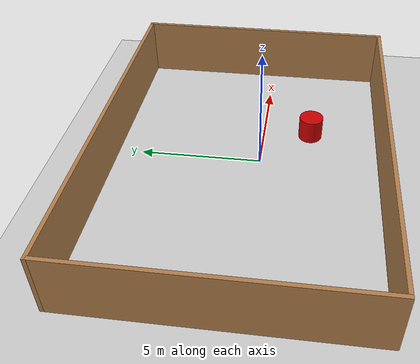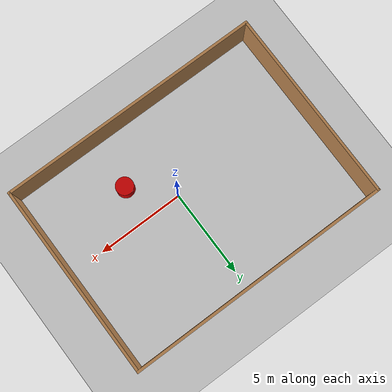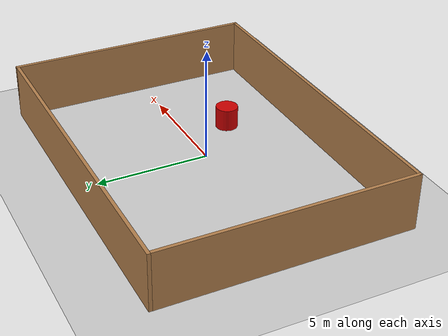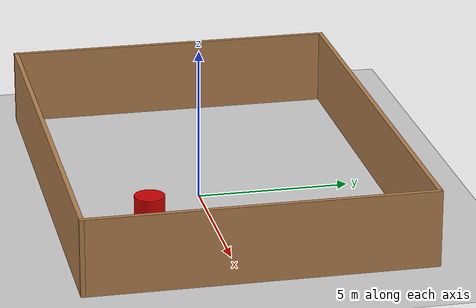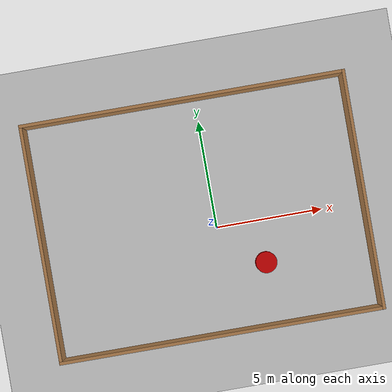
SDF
<sdf version="1.7">
 <world name="default">
  <light name="sun" type="directional">
   <pose>0 0 10 0 -0 0</pose>
   <diffuse>0.8 0.8 0.8 1</diffuse>
   <specular>0.2 0.2 0.2 1</specular>
   <attenuation>
    <range>1000</range>
    <constant>0.9</constant>
    <linear>0.01</linear>
    <quadratic>0.001</quadratic>
   </attenuation>
   <direction>-0.5 0.1 -0.9</direction>
   <spot><inner_angle>0</inner_angle><outer_angle>0</outer_angle><falloff>0</falloff></spot>
  </light>
  <model name="ground_plane">
   <static>1</static>
   <link name="link">
    <collision name="collision">
     <geometry><plane><normal>0 0 1</normal><size>100 100</size></plane></geometry>
     <surface><friction><ode><mu>100</mu><mu2>50</mu2></ode></friction></surface>
    </collision>
    <visual name="visual">
     <cast_shadows>0</cast_shadows>
     <geometry><plane><normal>0 0 1</normal><size>100 100</size></plane></geometry>
     <material>
      <script><uri>file://media/materials/scripts/gazebo.material</uri><name>Gazebo/Grey</name></script>
     </material>
    </visual>
   </link>
  </model>
  <gravity>0 0 -9.8</gravity>
  <magnetic_field>6e-06 2.3e-05 -4.2e-05</magnetic_field>
  <atmosphere type="adiabatic"/>
  <physics name="default_physics" default="0" type="ode">
   <max_step_size>0.001</max_step_size>
   <real_time_factor>1</real_time_factor>
   <real_time_update_rate>1000</real_time_update_rate>
  </physics>
  <scene><ambient>0.4 0.4 0.4 1</ambient><background>0.7 0.7 0.7 1</background><shadows>1</shadows></scene>
  <spherical_coordinates>
   <surface_model>EARTH_WGS84</surface_model>
   <latitude_deg>0</latitude_deg>
   <longitude_deg>0</longitude_deg>
   <elevation>0</elevation>
   <heading_deg>0</heading_deg>
  </spherical_coordinates>
  <model name="test">
   <pose>-0.59103 0.583322 0 0 -0 0</pose>
   <link name="Wall_10">
    <collision name="Wall_10_Collision">
     <geometry><box><size>11.15 0.15 2.5</size></box></geometry>
     <pose>0 0 1.25 0 -0 0</pose>
    </collision>
    <visual name="Wall_10_Visual">
     <pose>0 0 1.25 0 -0 0</pose>
     <geometry><box><size>11.15 0.15 2.5</size></box></geometry>
     <material>
      <script><uri>file://media/materials/scripts/gazebo.material</uri><name>Gazebo/Wood</name></script>
      <ambient>0.760784 0.662745 0.627451 1</ambient>
     </material>
     <meta><layer>0</layer></meta>
    </visual>
    <pose>7.5 0 0 0 -0 -1.5708</pose>
   </link>
   <link name="Wall_4">
    <collision name="Wall_4_Collision">
     <geometry><box><size>15.15 0.15 2.5</size></box></geometry>
     <pose>0 0 1.25 0 -0 0</pose>
    </collision>
    <visual name="Wall_4_Visual">
     <pose>0 0 1.25 0 -0 0</pose>
     <geometry><box><size>15.15 0.15 2.5</size></box></geometry>
     <material>
      <script><uri>file://media/materials/scripts/gazebo.material</uri><name>Gazebo/Wood</name></script>
      <ambient>0.760784 0.662745 0.627451 1</ambient>
     </material>
     <meta><layer>0</layer></meta>
    </visual>
    <pose>0 -5.5 0 0 -0 0</pose>
   </link>
   <link name="Wall_6">
    <collision name="Wall_6_Collision">
     <geometry><box><size>15.15 0.15 2.5</size></box></geometry>
     <pose>0 0 1.25 0 -0 0</pose>
    </collision>
    <visual name="Wall_6_Visual">
     <pose>0 0 1.25 0 -0 0</pose>
     <geometry><box><size>15.15 0.15 2.5</size></box></geometry>
     <material>
      <script><uri>file://media/materials/scripts/gazebo.material</uri><name>Gazebo/Wood</name></script>
      <ambient>0.760784 0.662745 0.627451 1</ambient>
     </material>
     <meta><layer>0</layer></meta>
    </visual>
    <pose>0 5.5 0 0 -0 0</pose>
   </link>
   <link name="Wall_8">
    <collision name="Wall_8_Collision">
     <geometry><box><size>11.15 0.15 2.5</size></box></geometry>
     <pose>0 0 1.25 0 -0 0</pose>
    </collision>
    <visual name="Wall_8_Visual">
     <pose>0 0 1.25 0 -0 0</pose>
     <geometry><box><size>11.15 0.15 2.5</size></box></geometry>
     <material>
      <script><uri>file://media/materials/scripts/gazebo.material</uri><name>Gazebo/Wood</name></script>
      <ambient>0.760784 0.662745 0.627451 1</ambient>
     </material>
     <meta><layer>0</layer></meta>
    </visual>
    <pose>-7.5 0 0 0 -0 -1.5708</pose>
   </link>
   <static>1</static>
  </model>
  <model name="focus_point">
   <link name="link">
    <inertial>
     <mass>1</mass>
     <inertia><ixx>0.145833</ixx><ixy>0</ixy><ixz>0</ixz><iyy>0.145833</iyy><iyz>0</iyz><izz>0.125</izz></inertia>
    </inertial>
    <visual name="visual">
     <geometry><cylinder><radius>0.5</radius><length>1</length></cylinder></geometry>
     <material>
      <script><name>Gazebo/Grey</name><uri>file://media/materials/scripts/gazebo.material</uri></script>
      <shader type="pixel"><normal_map>__default__</normal_map></shader>
      <ambient>0.8 0 0 0</ambient>
      <diffuse>0.7 0.7 0.7 1</diffuse>
      <specular>0.01 0.01 0.01 1</specular>
      <emissive>0 0 0 1</emissive>
     </material>
    </visual>
    <collision name="collision">
     <geometry><cylinder><radius>0.5</radius><length>1</length></cylinder></geometry>
     <surface>
      <friction>
       <ode><mu>1</mu><mu2>1</mu2><fdir1>0 0 0</fdir1><slip1>0</slip1><slip2>0</slip2></ode>
       <torsional>
        <coefficient>1</coefficient>
        <patch_radius>0</patch_radius>
        <surface_radius>0</surface_radius>
        <use_patch_radius>1</use_patch_radius>
        <ode><slip>0</slip></ode>
       </torsional>
      </friction>
      <bounce><restitution_coefficient>0</restitution_coefficient><threshold>1e+06</threshold></bounce>
      <contact>
       <collide_without_contact>0</collide_without_contact>
       <collide_without_contact_bitmask>1</collide_without_contact_bitmask>
       <collide_bitmask>1</collide_bitmask>
       <ode>
        <soft_cfm>0</soft_cfm>
        <soft_erp>0.2</soft_erp>
        <kp>1e+13</kp>
        <kd>1</kd>
        <max_vel>0.01</max_vel>
        <min_depth>0</min_depth>
       </ode>
       <bullet>
        <split_impulse>1</split_impulse>
        <split_impulse_penetration_threshold>-0.01</split_impulse_penetration_threshold>
        <soft_cfm>0</soft_cfm>
        <soft_erp>0.2</soft_erp>
        <kp>1e+13</kp>
        <kd>1</kd>
       </bullet>
      </contact>
     </surface>
    </collision>
   </link>
   <static>0</static>
   <pose>2 -2 0.499995 2e-06 2e-06 0</pose>
  </model>
  <audio><device>default</device></audio>
 </world>
</sdf>
